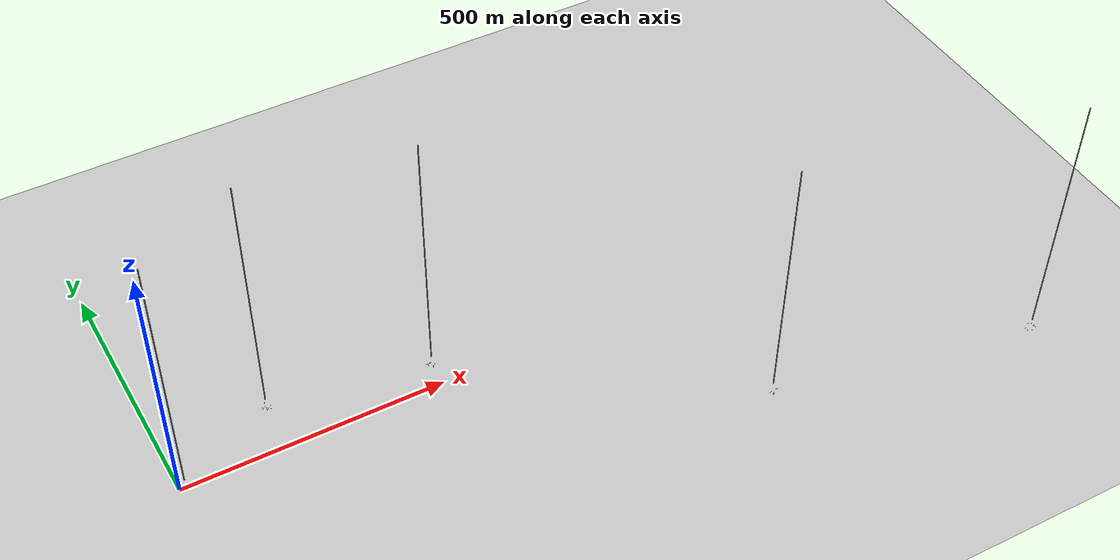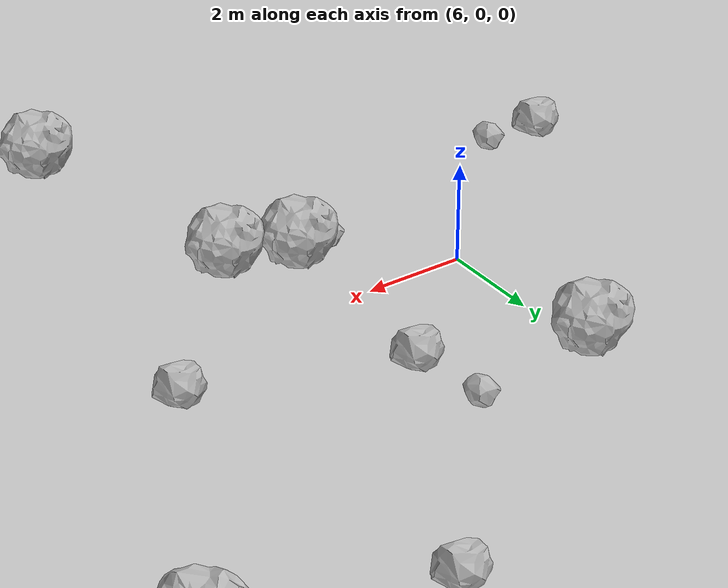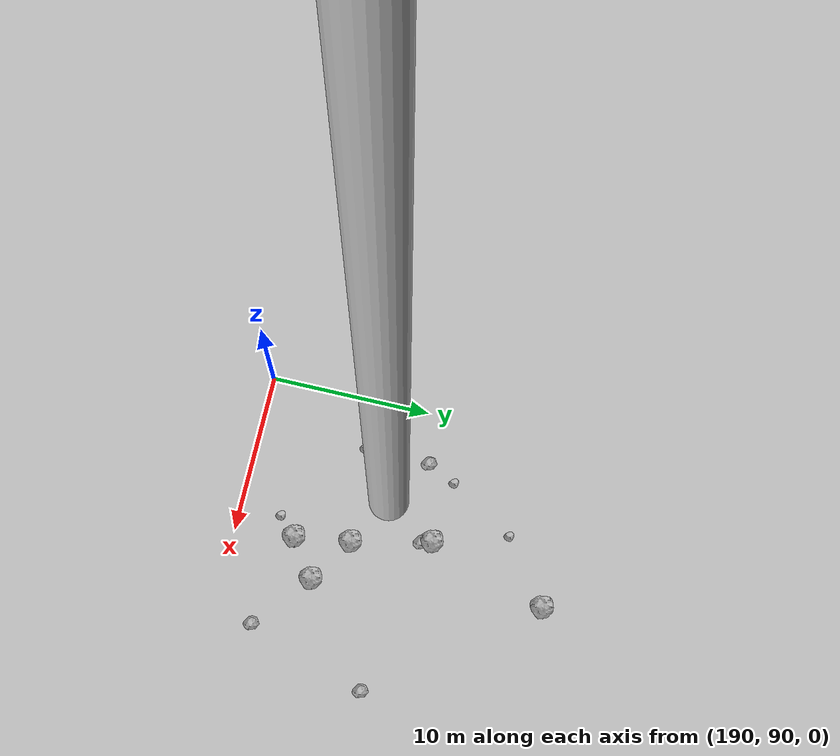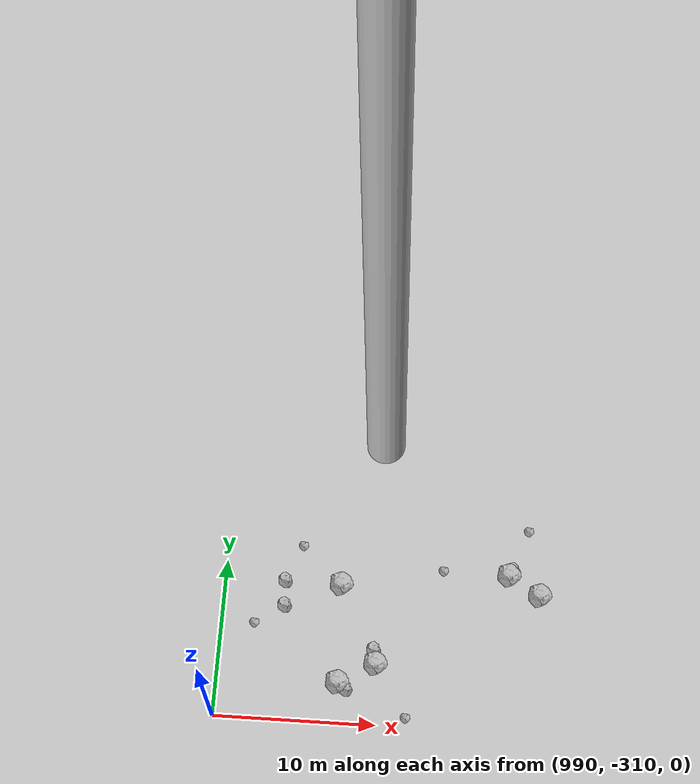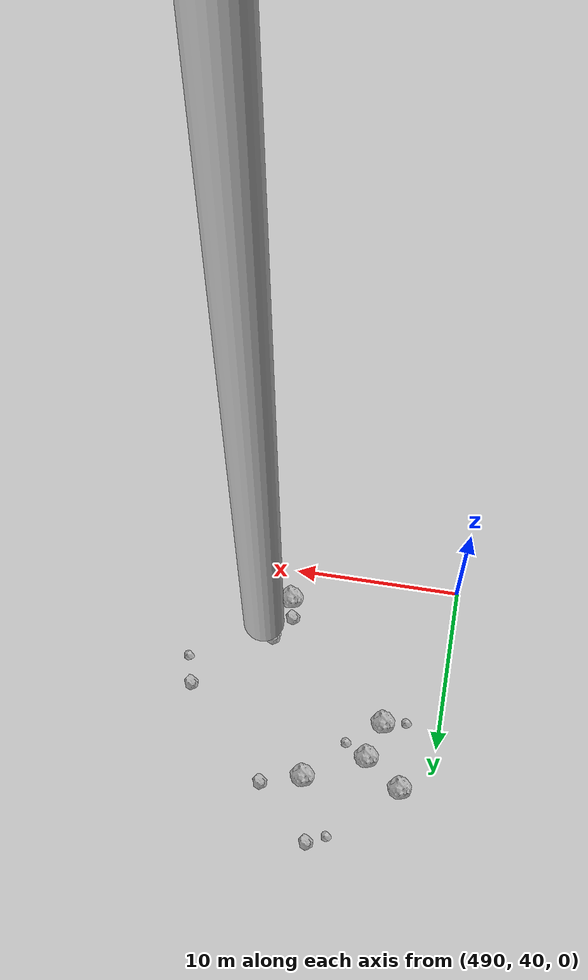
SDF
<?xml version="1.0" ?>
<sdf version="1.6">
  <world name="default">

    <include>
      <uri>model://custom_ground</uri>
    </include>

    <include>
      <uri>model://sun</uri>
    </include>

    <spherical_coordinates>
      <surface_model>EARTH_WGS84</surface_model>
      <latitude_deg>38.161479</latitude_deg>
      <longitude_deg>-122.454630</longitude_deg>
      <elevation>488.0</elevation>
      <heading_deg>90</heading_deg>
    </spherical_coordinates>

    <model name="rock1_0_0">
      <include>
        <uri>model://rock1</uri>
        <pose>9.749154168529655 -2.273538940306697 0.5 0 0 0</pose>
      </include>
    </model>
    <model name="rock1_0_1">
      <include>
        <uri>model://rock1</uri>
        <pose>8.447259675666604 -1.7671476299737208 0.5 0 0 0</pose>
      </include>
    </model>
    <model name="rock1_0_2">
      <include>
        <uri>model://rock1</uri>
        <pose>10.83767947354411 -7.613585462780876 0.5 0 0 0</pose>
      </include>
    </model>
    <model name="rock1_0_3">
      <include>
        <uri>model://rock1</uri>
        <pose>5.852622790889037 3.6081215457855222 0.5 0 0 0</pose>
      </include>
    </model>
    <model name="rock1_0_4">
      <include>
        <uri>model://rock1</uri>
        <pose>15.663414336230323 6.508940793725799 0.5 0 0 0</pose>
      </include>
    </model>
    <model name="rock2_0_0">
      <include>
        <uri>model://rock2</uri>
        <pose>8.70296183435771 2.4088334790827943 0.3 0 0 0</pose>
      </include>
    </model>
    <model name="rock2_0_1">
      <include>
        <uri>model://rock2</uri>
        <pose>11.665662207256029 7.604411342790197 0.3 0 0 0</pose>
      </include>
    </model>
    <model name="rock2_0_2">
      <include>
        <uri>model://rock2</uri>
        <pose>1.596894385782639 -3.191470737067217 0.3 0 0 0</pose>
      </include>
    </model>
    <model name="rock2_0_3">
      <include>
        <uri>model://rock2</uri>
        <pose>12.67520048865963 1.0221567027338079 0.3 0 0 0</pose>
      </include>
    </model>
    <model name="rock2_0_4">
      <include>
        <uri>model://rock2</uri>
        <pose>17.257728905452783 -6.747228981849139 0.3 0 0 0</pose>
      </include>
    </model>
    <model name="rock3_0_0">
      <include>
        <uri>model://rock3</uri>
        <pose>12.181286853652498 9.432386147685172 0.2 0 0 0</pose>
      </include>
    </model>
    <model name="rock3_0_1">
      <include>
        <uri>model://rock3</uri>
        <pose>3.167269652487077 4.971376271872682 0.2 0 0 0</pose>
      </include>
    </model>
    <model name="rock3_0_2">
      <include>
        <uri>model://rock3</uri>
        <pose>2.7140332957058066 -3.32084382093631 0.2 0 0 0</pose>
      </include>
    </model>
    <model name="rock3_0_3">
      <include>
        <uri>model://rock3</uri>
        <pose>8.432699787806154 3.885988931868029 0.2 0 0 0</pose>
      </include>
    </model>
    <model name="rock3_0_4">
      <include>
        <uri>model://rock3</uri>
        <pose>7.602046166661413 -1.9807870369154479 0.2 0 0 0</pose>
      </include>
    </model>
    <model name="rock1_1_0">
      <include>
        <uri>model://rock1</uri>
        <pose>199.64757743311503 93.69221804981163 0.5 0 0 0</pose>
      </include>
    </model>
    <model name="rock1_1_1">
      <include>
        <uri>model://rock1</uri>
        <pose>198.0204237491795 102.0470497174845 0.5 0 0 0</pose>
      </include>
    </model>
    <model name="rock1_1_2">
      <include>
        <uri>model://rock1</uri>
        <pose>200.45856978084674 109.51089292564478 0.5 0 0 0</pose>
      </include>
    </model>
    <model name="rock1_1_3">
      <include>
        <uri>model://rock1</uri>
        <pose>201.95010636605323 95.33317182732694 0.5 0 0 0</pose>
      </include>
    </model>
    <model name="rock1_1_4">
      <include>
        <uri>model://rock1</uri>
        <pose>199.15043425962813 97.15254974996438 0.5 0 0 0</pose>
      </include>
    </model>
    <model name="rock2_1_0">
      <include>
        <uri>model://rock2</uri>
        <pose>205.4363978306166 92.47439970199416 0.3 0 0 0</pose>
      </include>
    </model>
    <model name="rock2_1_1">
      <include>
        <uri>model://rock2</uri>
        <pose>192.92137675348025 97.68063220057539 0.3 0 0 0</pose>
      </include>
    </model>
    <model name="rock2_1_2">
      <include>
        <uri>model://rock2</uri>
        <pose>193.2111186447491 100.78752288680188 0.3 0 0 0</pose>
      </include>
    </model>
    <model name="rock2_1_3">
      <include>
        <uri>model://rock2</uri>
        <pose>198.17808357796798 101.42948276726545 0.3 0 0 0</pose>
      </include>
    </model>
    <model name="rock2_1_4">
      <include>
        <uri>model://rock2</uri>
        <pose>207.92331440473117 99.9307649198677 0.3 0 0 0</pose>
      </include>
    </model>
    <model name="rock3_1_0">
      <include>
        <uri>model://rock3</uri>
        <pose>196.54663307506974 106.6062275795486 0.2 0 0 0</pose>
      </include>
    </model>
    <model name="rock3_1_1">
      <include>
        <uri>model://rock3</uri>
        <pose>194.31006980513274 99.35570944966939 0.2 0 0 0</pose>
      </include>
    </model>
    <model name="rock3_1_2">
      <include>
        <uri>model://rock3</uri>
        <pose>193.15350165142584 96.6298491313881 0.2 0 0 0</pose>
      </include>
    </model>
    <model name="rock3_1_3">
      <include>
        <uri>model://rock3</uri>
        <pose>198.48745225093373 92.55582378197288 0.2 0 0 0</pose>
      </include>
    </model>
    <model name="rock3_1_4">
      <include>
        <uri>model://rock3</uri>
        <pose>194.05660547220126 102.53344116724618 0.2 0 0 0</pose>
      </include>
    </model>
    <model name="rock1_2_0">
      <include>
        <uri>model://rock1</uri>
        <pose>500.09983819042276 41.94635805248774 0.5 0 0 0</pose>
      </include>
    </model>
    <model name="rock1_2_1">
      <include>
        <uri>model://rock1</uri>
        <pose>491.8807359910129 52.78214831031896 0.5 0 0 0</pose>
      </include>
    </model>
    <model name="rock1_2_2">
      <include>
        <uri>model://rock1</uri>
        <pose>497.71597167848086 52.911632322169794 0.5 0 0 0</pose>
      </include>
    </model>
    <model name="rock1_2_3">
      <include>
        <uri>model://rock1</uri>
        <pose>494.10031519033856 51.18587506985649 0.5 0 0 0</pose>
      </include>
    </model>
    <model name="rock1_2_4">
      <include>
        <uri>model://rock1</uri>
        <pose>493.41249663314835 48.94301184623032 0.5 0 0 0</pose>
      </include>
    </model>
    <model name="rock2_2_0">
      <include>
        <uri>model://rock2</uri>
        <pose>500.8264512880572 44.59336162420637 0.3 0 0 0</pose>
      </include>
    </model>
    <model name="rock2_2_1">
      <include>
        <uri>model://rock2</uri>
        <pose>499.81703488081166 43.15559058518803 0.3 0 0 0</pose>
      </include>
    </model>
    <model name="rock2_2_2">
      <include>
        <uri>model://rock2</uri>
        <pose>496.89449180504243 56.819075464192835 0.3 0 0 0</pose>
      </include>
    </model>
    <model name="rock2_2_3">
      <include>
        <uri>model://rock2</uri>
        <pose>505.2779923347275 48.20367504456764 0.3 0 0 0</pose>
      </include>
    </model>
    <model name="rock2_2_4">
      <include>
        <uri>model://rock2</uri>
        <pose>500.16261290921994 53.63890700954903 0.3 0 0 0</pose>
      </include>
    </model>
    <model name="rock3_2_0">
      <include>
        <uri>model://rock3</uri>
        <pose>491.9724330121378 48.698709054925374 0.2 0 0 0</pose>
      </include>
    </model>
    <model name="rock3_2_1">
      <include>
        <uri>model://rock3</uri>
        <pose>505.69688100407666 46.46465762794907 0.2 0 0 0</pose>
      </include>
    </model>
    <model name="rock3_2_2">
      <include>
        <uri>model://rock3</uri>
        <pose>495.40948606710157 50.434315206499235 0.2 0 0 0</pose>
      </include>
    </model>
    <model name="rock3_2_3">
      <include>
        <uri>model://rock3</uri>
        <pose>495.74298444483253 56.24961990199046 0.2 0 0 0</pose>
      </include>
    </model>
    <model name="rock3_2_4">
      <include>
        <uri>model://rock3</uri>
        <pose>500.65760484724 44.28768259605445 0.2 0 0 0</pose>
      </include>
    </model>
    <model name="rock1_3_0">
      <include>
        <uri>model://rock1</uri>
        <pose>1007.742816356896 -299.98683863396553 0.5 0 0 0</pose>
      </include>
    </model>
    <model name="rock1_3_1">
      <include>
        <uri>model://rock1</uri>
        <pose>997.4799417404013 -307.532814489715 0.5 0 0 0</pose>
      </include>
    </model>
    <model name="rock1_3_2">
      <include>
        <uri>model://rock1</uri>
        <pose>999.7435796412228 -306.22511666657914 0.5 0 0 0</pose>
      </include>
    </model>
    <model name="rock1_3_3">
      <include>
        <uri>model://rock1</uri>
        <pose>1009.6999566365421 -301.19460968807755 0.5 0 0 0</pose>
      </include>
    </model>
    <model name="rock1_3_4">
      <include>
        <uri>model://rock1</uri>
        <pose>997.2961573017054 -301.2126717757015 0.5 0 0 0</pose>
      </include>
    </model>
    <model name="rock2_3_0">
      <include>
        <uri>model://rock2</uri>
        <pose>1007.9634142058264 -299.5441165952876 0.3 0 0 0</pose>
      </include>
    </model>
    <model name="rock2_3_1">
      <include>
        <uri>model://rock2</uri>
        <pose>993.819896704457 -302.72802664913854 0.3 0 0 0</pose>
      </include>
    </model>
    <model name="rock2_3_2">
      <include>
        <uri>model://rock2</uri>
        <pose>997.9776247526232 -307.8647693296173 0.3 0 0 0</pose>
      </include>
    </model>
    <model name="rock2_3_3">
      <include>
        <uri>model://rock2</uri>
        <pose>999.5635127167761 -305.2728048874372 0.3 0 0 0</pose>
      </include>
    </model>
    <model name="rock2_3_4">
      <include>
        <uri>model://rock2</uri>
        <pose>993.7469386350123 -301.11689160399595 0.3 0 0 0</pose>
      </include>
    </model>
    <model name="rock3_3_0">
      <include>
        <uri>model://rock3</uri>
        <pose>994.698960484252 -298.7601620452295 0.2 0 0 0</pose>
      </include>
    </model>
    <model name="rock3_3_1">
      <include>
        <uri>model://rock3</uri>
        <pose>1008.8716102814911 -296.9122604342416 0.2 0 0 0</pose>
      </include>
    </model>
    <model name="rock3_3_2">
      <include>
        <uri>model://rock3</uri>
        <pose>1003.6058523374196 -299.8863774170706 0.2 0 0 0</pose>
      </include>
    </model>
    <model name="rock3_3_3">
      <include>
        <uri>model://rock3</uri>
        <pose>1001.7449898537185 -309.4817218912084 0.2 0 0 0</pose>
      </include>
    </model>
    <model name="rock3_3_4">
      <include>
        <uri>model://rock3</uri>
        <pose>992.0254367703265 -303.9914694959029 0.2 0 0 0</pose>
      </include>
    </model>
    <model name="rock1_4_0">
      <include>
        <uri>model://rock1</uri>
        <pose>1491.0583426920052 -403.7153872217709 0.5 0 0 0</pose>
      </include>
    </model>
    <model name="rock1_4_1">
      <include>
        <uri>model://rock1</uri>
        <pose>1508.428524663971 -400.1632074520422 0.5 0 0 0</pose>
      </include>
    </model>
    <model name="rock1_4_2">
      <include>
        <uri>model://rock1</uri>
        <pose>1497.9272843204315 -407.29926949782254 0.5 0 0 0</pose>
      </include>
    </model>
    <model name="rock1_4_3">
      <include>
        <uri>model://rock1</uri>
        <pose>1507.641141477037 -393.93761220902405 0.5 0 0 0</pose>
      </include>
    </model>
    <model name="rock1_4_4">
      <include>
        <uri>model://rock1</uri>
        <pose>1497.1653518369826 -406.21510328882107 0.5 0 0 0</pose>
      </include>
    </model>
    <model name="rock2_4_0">
      <include>
        <uri>model://rock2</uri>
        <pose>1492.7877113891918 -402.2764672885801 0.3 0 0 0</pose>
      </include>
    </model>
    <model name="rock2_4_1">
      <include>
        <uri>model://rock2</uri>
        <pose>1507.8194826136853 -402.74682060956735 0.3 0 0 0</pose>
      </include>
    </model>
    <model name="rock2_4_2">
      <include>
        <uri>model://rock2</uri>
        <pose>1508.9064933868988 -404.3182350589165 0.3 0 0 0</pose>
      </include>
    </model>
    <model name="rock2_4_3">
      <include>
        <uri>model://rock2</uri>
        <pose>1505.717980857058 -394.2273613150657 0.3 0 0 0</pose>
      </include>
    </model>
    <model name="rock2_4_4">
      <include>
        <uri>model://rock2</uri>
        <pose>1490.6325560713344 -398.21669334252124 0.3 0 0 0</pose>
      </include>
    </model>
    <model name="rock3_4_0">
      <include>
        <uri>model://rock3</uri>
        <pose>1504.4519967507808 -391.8632540656009 0.2 0 0 0</pose>
      </include>
    </model>
    <model name="rock3_4_1">
      <include>
        <uri>model://rock3</uri>
        <pose>1490.6039126800054 -402.9697519070326 0.2 0 0 0</pose>
      </include>
    </model>
    <model name="rock3_4_2">
      <include>
        <uri>model://rock3</uri>
        <pose>1507.1339323336067 -405.1865955644919 0.2 0 0 0</pose>
      </include>
    </model>
    <model name="rock3_4_3">
      <include>
        <uri>model://rock3</uri>
        <pose>1508.5356465285518 -401.49133112700247 0.2 0 0 0</pose>
      </include>
    </model>
    <model name="rock3_4_4">
      <include>
        <uri>model://rock3</uri>
        <pose>1502.6349317457498 -390.84851402628675 0.2 0 0 0</pose>
      </include>
    </model>

    <model name="cylinder_1">
      <static>true</static>
      <link name="link">
        <visual name="visual">
          <geometry>
            <cylinder>
              <radius>1</radius>
              <length>500</length>
            </cylinder>
          </geometry>
        </visual>
      </link>
      <pose>10 0 270 0 0 0</pose>
    </model>

    <model name="cylinder_2">
      <static>true</static>
      <link name="link">
        <visual name="visual">
          <geometry>
            <cylinder>
              <radius>1</radius>
              <length>500</length>
            </cylinder>
          </geometry>
        </visual>
      </link>
      <pose>200 100 270 0 0 0</pose>
    </model>

    <model name="cylinder_3">
      <static>true</static>
      <link name="link">
        <visual name="visual">
          <geometry>
            <cylinder>
              <radius>1</radius>
              <length>500</length>
            </cylinder>
          </geometry>
        </visual>
      </link>
      <pose>500 50 270 0 0 0</pose>
    </model>

    <model name="cylinder_4">
      <static>true</static>
      <link name="link">
        <visual name="visual">
          <geometry>
            <cylinder>
              <radius>1</radius>
              <length>500</length>
            </cylinder>
          </geometry>
        </visual>
      </link>
      <pose>1000 -300 270 0 0 0</pose>
    </model>

    <model name="cylinder_5">
      <static>true</static>
      <link name="link">
        <visual name="visual">
          <geometry>
            <cylinder>
              <radius>1</radius>
              <length>500</length>
            </cylinder>
          </geometry>
        </visual>
      </link>
      <pose>1500 -400 270 0 0 0</pose>
    </model>

  </world>
</sdf>

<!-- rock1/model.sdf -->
<sdf version="1.6">
  <model name="rock1">
    <static>true</static> <!-- Set to true if the model should not move -->
    <pose>0 0 0 0 0 0</pose>

    <!--z offset is 0.5 for full scale-->

    <link name="link">
      <collision name="rock1_collision">
        <geometry>
          <mesh>
            <uri>model://meshes/rock1.dae</uri>
          </mesh>
        </geometry>
      </collision>
      <visual name="rock1_visual">
        <geometry>
          <mesh>
            <uri>model://meshes/rock1.dae</uri>
          </mesh>
        </geometry>
        <material>
          <script>
            <uri>model://materials/scripts/sand_pebbles.material</uri>
            <name>custom_ground/Image</name>
          </script>
        </material>
      </visual>
    </link>
  </model>
</sdf>

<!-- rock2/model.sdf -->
<sdf version="1.6">
  <model name="rock2">
    <static>true</static> <!-- Set to true if the model should not move -->
    <pose>0 0 0 0 0 0</pose>

    <!--z offset is 0.3 for full scale-->

    <link name="link">
      <collision name="rock2_collision">
        <geometry>
          <mesh>
            <uri>model://meshes/rock2.dae</uri>
          </mesh>
        </geometry>
      </collision>
      <visual name="rock2_visual">
        <geometry>
          <mesh>
            <uri>model://meshes/rock2.dae</uri>
          </mesh>
        </geometry>
        <material>
          <script>
            <uri>model://materials/scripts/sand_pebbles.material</uri>
            <name>custom_ground/Image</name>
          </script>
        </material>
      </visual>
    </link>
  </model>
</sdf>

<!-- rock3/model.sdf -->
<sdf version="1.6">
  <model name="rock3">
    <static>true</static> <!-- Set to true if the model should not move -->
    <pose>0 0 0 0 0 0</pose>

    <!--z offset is 0.2 for full scale-->

    <link name="link">
      <collision name="rock3_collision">
        <geometry>
          <mesh>
            <uri>model://meshes/rock3.dae</uri>
          </mesh>
        </geometry>
      </collision>
      <visual name="rock3_visual">
        <geometry>
          <mesh>
            <uri>model://meshes/rock3.dae</uri>
          </mesh>
        </geometry>
        <material>
          <script>
            <uri>model://materials/scripts/sand_pebbles.material</uri>
            <name>custom_ground/Image</name>
          </script>
        </material>
      </visual>
    </link>
  </model>
</sdf>

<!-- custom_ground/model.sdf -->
<sdf version="1.6">
  <model name="custom_ground">
    <static>true</static> <!-- Ground is static and immovable -->
    <link name="ground_link">
      <pose>240 0 0 0 0 0</pose> <!-- Position and orientation relative to the world -->
      <!-- Visual Representation -->
      <visual name="ground_visual">
        <geometry>
          <plane>
            <normal>0 0 1</normal> <!-- Upward facing plane -->
            <size>500 500</size> <!-- Size of the plane -->
          </plane>
        </geometry>
        <material>
          <script>
            <uri>model://materials/scripts/sand_pebbles.material</uri>
            <name>custom_ground/Image</name>
          </script>
        </material>
      </visual>

      <!-- Collision Representation -->
      <collision name="ground_collision">
        <geometry>
          <plane>
            <normal>0 0 1</normal>
            <size>100 100</size>
          </plane>
        </geometry>
      </collision>

    </link>
  </model>
</sdf>
